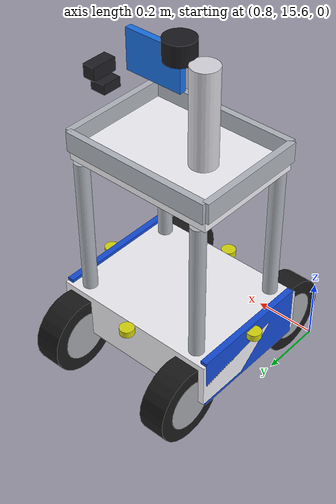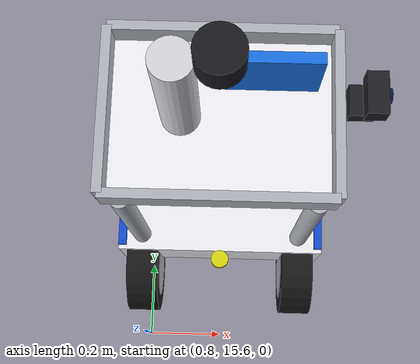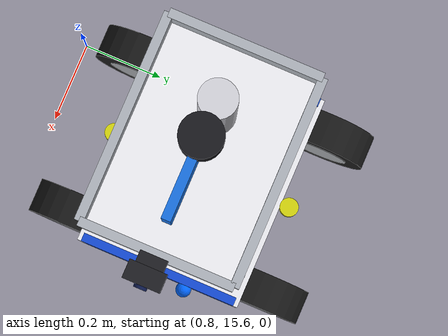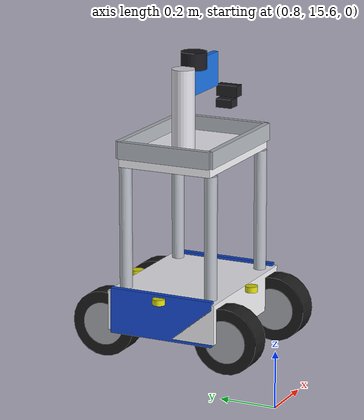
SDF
<sdf version="1.9">
 <world name="hospital">
  <model name="PharmaBot">
   <pose>1.0 16.0 0.22 0 0 0</pose>
   <link name="base_link">
    <pose>0 0 0.06 0 0 0</pose>
    <inertial>
     <mass>12.0</mass>
     <inertia><ixx>0.3</ixx><ixy>0</ixy><ixz>0</ixz><iyy>0.45</iyy><iyz>0</iyz><izz>0.65</izz></inertia>
    </inertial>
    <collision name="cc"><geometry><box><size>0.52 0.4 0.14</size></box></geometry></collision>
    <visual name="chassis">
     <geometry><box><size>0.52 0.4 0.14</size></box></geometry>
     <material>
      <ambient>0.95 0.95 0.97 1</ambient>
      <diffuse>0.95 0.95 0.97 1</diffuse>
      <specular>0.5 0.5 0.5 1</specular>
     </material>
    </visual>
    <visual name="bb_f">
     <pose>0.25 0 0 0 0 0</pose>
     <geometry><box><size>0.02 0.38 0.16</size></box></geometry>
     <material>
      <ambient>0.08 0.3 0.85 1</ambient>
      <diffuse>0.08 0.3 0.85 1</diffuse>
      <emissive>0.02 0.08 0.25 1</emissive>
     </material>
    </visual>
    <visual name="bb_b">
     <pose>-0.25 0 0 0 0 0</pose>
     <geometry><box><size>0.02 0.38 0.16</size></box></geometry>
     <material>
      <ambient>0.08 0.3 0.85 1</ambient>
      <diffuse>0.08 0.3 0.85 1</diffuse>
      <emissive>0.02 0.08 0.25 1</emissive>
     </material>
    </visual>
    <visual name="pil_ff">
     <pose>0.2 0.16 0.25 0 0 0</pose>
     <geometry><cylinder><radius>0.022</radius><length>0.5</length></cylinder></geometry>
     <material>
      <ambient>0.7 0.72 0.75 1</ambient>
      <diffuse>0.7 0.72 0.75 1</diffuse>
      <specular>0.8 0.8 0.8 1</specular>
     </material>
    </visual>
    <visual name="pil_fr">
     <pose>0.2 -0.16 0.25 0 0 0</pose>
     <geometry><cylinder><radius>0.022</radius><length>0.5</length></cylinder></geometry>
     <material>
      <ambient>0.7 0.72 0.75 1</ambient>
      <diffuse>0.7 0.72 0.75 1</diffuse>
      <specular>0.8 0.8 0.8 1</specular>
     </material>
    </visual>
    <visual name="pil_bf">
     <pose>-0.2 0.16 0.25 0 0 0</pose>
     <geometry><cylinder><radius>0.022</radius><length>0.5</length></cylinder></geometry>
     <material>
      <ambient>0.7 0.72 0.75 1</ambient>
      <diffuse>0.7 0.72 0.75 1</diffuse>
      <specular>0.8 0.8 0.8 1</specular>
     </material>
    </visual>
    <visual name="pil_br">
     <pose>-0.2 -0.16 0.25 0 0 0</pose>
     <geometry><cylinder><radius>0.022</radius><length>0.5</length></cylinder></geometry>
     <material>
      <ambient>0.7 0.72 0.75 1</ambient>
      <diffuse>0.7 0.72 0.75 1</diffuse>
      <specular>0.8 0.8 0.8 1</specular>
     </material>
    </visual>
    <visual name="plateau">
     <pose>0 0 0.52 0 0 0</pose>
     <geometry><box><size>0.46 0.34 0.04</size></box></geometry>
     <material>
      <ambient>0.96 0.96 0.98 1</ambient>
      <diffuse>0.96 0.96 0.98 1</diffuse>
      <specular>0.6 0.6 0.6 1</specular>
     </material>
    </visual>
    <visual name="rb_f">
     <pose>0.23 0 0.56 0 0 0</pose>
     <geometry><box><size>0.02 0.34 0.06</size></box></geometry>
     <material><ambient>0.7 0.72 0.75 1</ambient><diffuse>0.7 0.72 0.75 1</diffuse></material>
    </visual>
    <visual name="rb_b">
     <pose>-0.23 0 0.56 0 0 0</pose>
     <geometry><box><size>0.02 0.34 0.06</size></box></geometry>
     <material><ambient>0.7 0.72 0.75 1</ambient><diffuse>0.7 0.72 0.75 1</diffuse></material>
    </visual>
    <visual name="rb_l">
     <pose>0 0.17 0.56 0 0 0</pose>
     <geometry><box><size>0.46 0.02 0.06</size></box></geometry>
     <material><ambient>0.7 0.72 0.75 1</ambient><diffuse>0.7 0.72 0.75 1</diffuse></material>
    </visual>
    <visual name="rb_r">
     <pose>0 -0.17 0.56 0 0 0</pose>
     <geometry><box><size>0.46 0.02 0.06</size></box></geometry>
     <material><ambient>0.7 0.72 0.75 1</ambient><diffuse>0.7 0.72 0.75 1</diffuse></material>
    </visual>
    <visual name="mat">
     <pose>-0.08 0 0.65 0 0 0</pose>
     <geometry><cylinder><radius>0.04</radius><length>0.35</length></cylinder></geometry>
     <material><ambient>0.85 0.85 0.88 1</ambient><diffuse>0.85 0.85 0.88 1</diffuse></material>
    </visual>
    <visual name="ecran">
     <pose>0.08 0 0.78 0 0 0</pose>
     <geometry><box><size>0.18 0.02 0.12</size></box></geometry>
     <material>
      <ambient>0.1 0.45 0.9 1</ambient>
      <diffuse>0.1 0.45 0.9 1</diffuse>
      <emissive>0.04 0.18 0.36 1</emissive>
     </material>
    </visual>
    <visual name="led_g">
     <pose>0.27 0 0.05 0 0 0</pose>
     <geometry><sphere><radius>0.018</radius></sphere></geometry>
     <material><ambient>0 0.9 0 1</ambient><diffuse>0 0.9 0 1</diffuse><emissive>0 0.4 0 1</emissive></material>
    </visual>
    <visual name="led_b">
     <pose>0.27 0.07 0.05 0 0 0</pose>
     <geometry><sphere><radius>0.018</radius></sphere></geometry>
     <material><ambient>0 0.4 1 1</ambient><diffuse>0 0.4 1 1</diffuse><emissive>0 0.15 0.5 1</emissive></material>
    </visual>
    <visual name="lidar_corp">
     <pose>0 0 0.84 0 0 0</pose>
     <geometry><cylinder><radius>0.045</radius><length>0.06</length></cylinder></geometry>
     <material><ambient>0.1 0.1 0.12 1</ambient><diffuse>0.1 0.1 0.12 1</diffuse></material>
    </visual>
    <sensor name="lidar" type="gpu_lidar">
     <pose>0 0 0.85 0 0 0</pose>
     <topic>/demo/scan</topic>
     <update_rate>10</update_rate>
     <lidar>
      <scan>
       <horizontal>
        <samples>360</samples>
        <resolution>1</resolution>
        <min_angle>-3.14159</min_angle>
        <max_angle>3.14159</max_angle>
       </horizontal>
      </scan>
      <range><min>0.12</min><max>12.0</max><resolution>0.01</resolution></range>
     </lidar>
     <always_on>1</always_on>
     <visualize>true</visualize>
    </sensor>
   </link>
   <link name="fl_wheel">
    <pose>0.20 0.23 0 0 1.5707 0</pose>
    <inertial>
     <mass>1.5</mass>
     <inertia><ixx>0.006</ixx><ixy>0</ixy><ixz>0</ixz><iyy>0.006</iyy><iyz>0</iyz><izz>0.010</izz></inertia>
    </inertial>
    <collision name="c">
     <geometry><cylinder><radius>0.115</radius><length>0.08</length></cylinder></geometry>
     <surface><friction><ode><mu>1.5</mu><mu2>1.5</mu2></ode></friction></surface>
    </collision>
    <visual name="p">
     <geometry><cylinder><radius>0.115</radius><length>0.08</length></cylinder></geometry>
     <material><ambient>0.1 0.1 0.1 1</ambient><diffuse>0.1 0.1 0.1 1</diffuse></material>
    </visual>
    <visual name="j">
     <geometry><cylinder><radius>0.075</radius><length>0.082</length></cylinder></geometry>
     <material>
      <ambient>0.65 0.66 0.68 1</ambient>
      <diffuse>0.65 0.66 0.68 1</diffuse>
      <specular>0.5 0.5 0.5 1</specular>
     </material>
    </visual>
   </link>
   <link name="fr_wheel">
    <pose>0.20 -0.23 0 0 1.5707 0</pose>
    <inertial>
     <mass>1.5</mass>
     <inertia><ixx>0.006</ixx><ixy>0</ixy><ixz>0</ixz><iyy>0.006</iyy><iyz>0</iyz><izz>0.010</izz></inertia>
    </inertial>
    <collision name="c">
     <geometry><cylinder><radius>0.115</radius><length>0.08</length></cylinder></geometry>
     <surface><friction><ode><mu>1.5</mu><mu2>1.5</mu2></ode></friction></surface>
    </collision>
    <visual name="p">
     <geometry><cylinder><radius>0.115</radius><length>0.08</length></cylinder></geometry>
     <material><ambient>0.1 0.1 0.1 1</ambient><diffuse>0.1 0.1 0.1 1</diffuse></material>
    </visual>
    <visual name="j">
     <geometry><cylinder><radius>0.075</radius><length>0.082</length></cylinder></geometry>
     <material>
      <ambient>0.65 0.66 0.68 1</ambient>
      <diffuse>0.65 0.66 0.68 1</diffuse>
      <specular>0.5 0.5 0.5 1</specular>
     </material>
    </visual>
   </link>
   <link name="rl_wheel">
    <pose>-0.20 0.23 0 0 1.5707 0</pose>
    <inertial>
     <mass>1.5</mass>
     <inertia><ixx>0.006</ixx><ixy>0</ixy><ixz>0</ixz><iyy>0.006</iyy><iyz>0</iyz><izz>0.010</izz></inertia>
    </inertial>
    <collision name="c">
     <geometry><cylinder><radius>0.115</radius><length>0.08</length></cylinder></geometry>
     <surface><friction><ode><mu>1.5</mu><mu2>1.5</mu2></ode></friction></surface>
    </collision>
    <visual name="p">
     <geometry><cylinder><radius>0.115</radius><length>0.08</length></cylinder></geometry>
     <material><ambient>0.1 0.1 0.1 1</ambient><diffuse>0.1 0.1 0.1 1</diffuse></material>
    </visual>
    <visual name="j">
     <geometry><cylinder><radius>0.075</radius><length>0.082</length></cylinder></geometry>
     <material>
      <ambient>0.65 0.66 0.68 1</ambient>
      <diffuse>0.65 0.66 0.68 1</diffuse>
      <specular>0.5 0.5 0.5 1</specular>
     </material>
    </visual>
   </link>
   <link name="rr_wheel">
    <pose>-0.20 -0.23 0 0 1.5707 0</pose>
    <inertial>
     <mass>1.5</mass>
     <inertia><ixx>0.006</ixx><ixy>0</ixy><ixz>0</ixz><iyy>0.006</iyy><iyz>0</iyz><izz>0.010</izz></inertia>
    </inertial>
    <collision name="c">
     <geometry><cylinder><radius>0.115</radius><length>0.08</length></cylinder></geometry>
     <surface><friction><ode><mu>1.5</mu><mu2>1.5</mu2></ode></friction></surface>
    </collision>
    <visual name="p">
     <geometry><cylinder><radius>0.115</radius><length>0.08</length></cylinder></geometry>
     <material><ambient>0.1 0.1 0.1 1</ambient><diffuse>0.1 0.1 0.1 1</diffuse></material>
    </visual>
    <visual name="j">
     <geometry><cylinder><radius>0.075</radius><length>0.082</length></cylinder></geometry>
     <material>
      <ambient>0.65 0.66 0.68 1</ambient>
      <diffuse>0.65 0.66 0.68 1</diffuse>
      <specular>0.5 0.5 0.5 1</specular>
     </material>
    </visual>
   </link>
   <joint name="fl_j" type="revolute">
    <parent>base_link</parent>
    <child>fl_wheel</child>
    <axis><xyz>0 0 1</xyz><dynamics><damping>0.04</damping></dynamics></axis>
   </joint>
   <joint name="fr_j" type="revolute">
    <parent>base_link</parent>
    <child>fr_wheel</child>
    <axis><xyz>0 0 1</xyz><dynamics><damping>0.04</damping></dynamics></axis>
   </joint>
   <joint name="rl_j" type="revolute">
    <parent>base_link</parent>
    <child>rl_wheel</child>
    <axis><xyz>0 0 1</xyz><dynamics><damping>0.04</damping></dynamics></axis>
   </joint>
   <joint name="rr_j" type="revolute">
    <parent>base_link</parent>
    <child>rr_wheel</child>
    <axis><xyz>0 0 1</xyz><dynamics><damping>0.04</damping></dynamics></axis>
   </joint>
   <plugin filename="ignition-gazebo-diff-drive-system" name="ignition::gazebo::systems::DiffDrive">
    <left_joint>fl_j</left_joint>
    <left_joint>rl_j</left_joint>
    <right_joint>fr_j</right_joint>
    <right_joint>rr_j</right_joint>
    <wheel_separation>0.46</wheel_separation>
    <wheel_radius>0.115</wheel_radius>
    <max_linear_velocity>1.5</max_linear_velocity>
    <max_angular_velocity>2.5</max_angular_velocity>
    <max_linear_acceleration>2.0</max_linear_acceleration>
    <max_angular_acceleration>3.0</max_angular_acceleration>
    <topic>/demo/cmd_vel</topic>
    <odom_topic>/demo/odom</odom_topic>
    <tf_topic>/tf</tf_topic>
    <frame_id>odom</frame_id>
    <child_frame_id>base_link</child_frame_id>
    <odom_publish_frequency>20</odom_publish_frequency>
   </plugin>
   <link name="cam_rgb_link">
    <pose>0.28 0 0.74 0 0 0</pose>
    <inertial>
     <mass>0.05</mass>
     <inertia><ixx>0.0001</ixx><ixy>0</ixy><ixz>0</ixz><iyy>0.0001</iyy><iyz>0</iyz><izz>0.0001</izz></inertia>
    </inertial>
    <visual name="cam_body">
     <geometry><box><size>0.04 0.08 0.04</size></box></geometry>
     <material><ambient>0.12 0.12 0.14 1</ambient><diffuse>0.12 0.12 0.14 1</diffuse></material>
    </visual>
    <visual name="cam_lens">
     <pose>0.022 0 0 0 1.5707 0</pose>
     <geometry><cylinder><radius>0.014</radius><length>0.01</length></cylinder></geometry>
     <material>
      <ambient>0.05 0.1 0.3 1</ambient>
      <diffuse>0.05 0.1 0.3 1</diffuse>
      <specular>0.8 0.8 0.8 1</specular>
     </material>
    </visual>
    <sensor name="rgb_camera" type="camera">
     <topic>/demo/camera/rgb</topic>
     <update_rate>15</update_rate>
     <camera>
      <horizontal_fov>1.047</horizontal_fov>
      <image><width>640</width><height>480</height><format>R8G8B8</format></image>
      <clip><near>0.05</near><far>10.0</far></clip>
     </camera>
     <always_on>1</always_on>
     <visualize>false</visualize>
    </sensor>
   </link>
   <joint name="cam_rgb_j" type="fixed"><parent>base_link</parent><child>cam_rgb_link</child></joint>
   <link name="cam_depth_link">
    <pose>0.26 0 0.70 0 0 0</pose>
    <inertial>
     <mass>0.08</mass>
     <inertia><ixx>0.0001</ixx><ixy>0</ixy><ixz>0</ixz><iyy>0.0001</iyy><iyz>0</iyz><izz>0.0001</izz></inertia>
    </inertial>
    <visual name="depth_body">
     <geometry><box><size>0.05 0.06 0.03</size></box></geometry>
     <material><ambient>0.12 0.12 0.14 1</ambient><diffuse>0.12 0.12 0.14 1</diffuse></material>
    </visual>
    <visual name="depth_led">
     <pose>0.026 0 0.008 0 1.5707 0</pose>
     <geometry><cylinder><radius>0.006</radius><length>0.01</length></cylinder></geometry>
     <material>
      <ambient>0.9 0.15 0 1</ambient>
      <diffuse>0.9 0.15 0 1</diffuse>
      <emissive>0.35 0.05 0 1</emissive>
     </material>
    </visual>
    <sensor name="depth_camera" type="depth_camera">
     <topic>/demo/camera/depth</topic>
     <update_rate>10</update_rate>
     <camera>
      <horizontal_fov>1.047</horizontal_fov>
      <image><width>320</width><height>240</height><format>R_FLOAT32</format></image>
      <clip><near>0.1</near><far>8.0</far></clip>
     </camera>
     <always_on>1</always_on>
     <visualize>false</visualize>
    </sensor>
   </link>
   <joint name="cam_depth_j" type="fixed"><parent>base_link</parent><child>cam_depth_link</child></joint>
   <link name="imu_link">
    <pose>0 0 0.1 0 0 0</pose>
    <inertial>
     <mass>0.01</mass>
     <inertia><ixx>0.00001</ixx><ixy>0</ixy><ixz>0</ixz><iyy>0.00001</iyy><iyz>0</iyz><izz>0.00001</izz></inertia>
    </inertial>
    <sensor name="imu_sensor" type="imu">
     <topic>/demo/imu</topic>
     <update_rate>100</update_rate>
     <always_on>1</always_on>
     <imu>
      <angular_velocity>
       <x><noise type="gaussian"><mean>0</mean><stddev>0.0002</stddev></noise></x>
       <y><noise type="gaussian"><mean>0</mean><stddev>0.0002</stddev></noise></y>
       <z><noise type="gaussian"><mean>0</mean><stddev>0.0002</stddev></noise></z>
      </angular_velocity>
      <linear_acceleration>
       <x><noise type="gaussian"><mean>0</mean><stddev>0.017</stddev></noise></x>
       <y><noise type="gaussian"><mean>0</mean><stddev>0.017</stddev></noise></y>
       <z><noise type="gaussian"><mean>0</mean><stddev>0.017</stddev></noise></z>
      </linear_acceleration>
     </imu>
    </sensor>
   </link>
   <joint name="imu_j" type="fixed"><parent>base_link</parent><child>imu_link</child></joint>
   <link name="us_front_link">
    <pose>0.27 0 0.12 0 0 0</pose>
    <inertial>
     <mass>0.02</mass>
     <inertia><ixx>0.00001</ixx><ixy>0</ixy><ixz>0</ixz><iyy>0.00001</iyy><iyz>0</iyz><izz>0.00001</izz></inertia>
    </inertial>
    <visual name="v">
     <geometry><cylinder><radius>0.022</radius><length>0.02</length></cylinder></geometry>
     <material>
      <ambient>0.85 0.85 0.05 1</ambient>
      <diffuse>0.85 0.85 0.05 1</diffuse>
      <emissive>0.2 0.2 0 1</emissive>
     </material>
    </visual>
   </link>
   <joint name="us_f_j" type="fixed"><parent>base_link</parent><child>us_front_link</child></joint>
   <link name="us_back_link">
    <pose>-0.27 0 0.12 0 0 0</pose>
    <inertial>
     <mass>0.02</mass>
     <inertia><ixx>0.00001</ixx><ixy>0</ixy><ixz>0</ixz><iyy>0.00001</iyy><iyz>0</iyz><izz>0.00001</izz></inertia>
    </inertial>
    <visual name="v">
     <geometry><cylinder><radius>0.022</radius><length>0.02</length></cylinder></geometry>
     <material>
      <ambient>0.85 0.85 0.05 1</ambient>
      <diffuse>0.85 0.85 0.05 1</diffuse>
      <emissive>0.2 0.2 0 1</emissive>
     </material>
    </visual>
   </link>
   <joint name="us_b_j" type="fixed"><parent>base_link</parent><child>us_back_link</child></joint>
   <link name="us_left_link">
    <pose>0 0.22 0.12 0 0 0</pose>
    <inertial>
     <mass>0.02</mass>
     <inertia><ixx>0.00001</ixx><ixy>0</ixy><ixz>0</ixz><iyy>0.00001</iyy><iyz>0</iyz><izz>0.00001</izz></inertia>
    </inertial>
    <visual name="v">
     <geometry><cylinder><radius>0.022</radius><length>0.02</length></cylinder></geometry>
     <material>
      <ambient>0.85 0.85 0.05 1</ambient>
      <diffuse>0.85 0.85 0.05 1</diffuse>
      <emissive>0.2 0.2 0 1</emissive>
     </material>
    </visual>
   </link>
   <joint name="us_l_j" type="fixed"><parent>base_link</parent><child>us_left_link</child></joint>
   <link name="us_right_link">
    <pose>0 -0.22 0.12 0 0 0</pose>
    <inertial>
     <mass>0.02</mass>
     <inertia><ixx>0.00001</ixx><ixy>0</ixy><ixz>0</ixz><iyy>0.00001</iyy><iyz>0</iyz><izz>0.00001</izz></inertia>
    </inertial>
    <visual name="v">
     <geometry><cylinder><radius>0.022</radius><length>0.02</length></cylinder></geometry>
     <material>
      <ambient>0.85 0.85 0.05 1</ambient>
      <diffuse>0.85 0.85 0.05 1</diffuse>
      <emissive>0.2 0.2 0 1</emissive>
     </material>
    </visual>
   </link>
   <joint name="us_r_j" type="fixed"><parent>base_link</parent><child>us_right_link</child></joint>
   <plugin filename="ignition-gazebo-pose-publisher-system" name="ignition::gazebo::systems::PosePublisher">
    <publish_link_pose>true</publish_link_pose>
    <update_frequency>20</update_frequency>
   </plugin>
  </model>
 </world>
</sdf>
